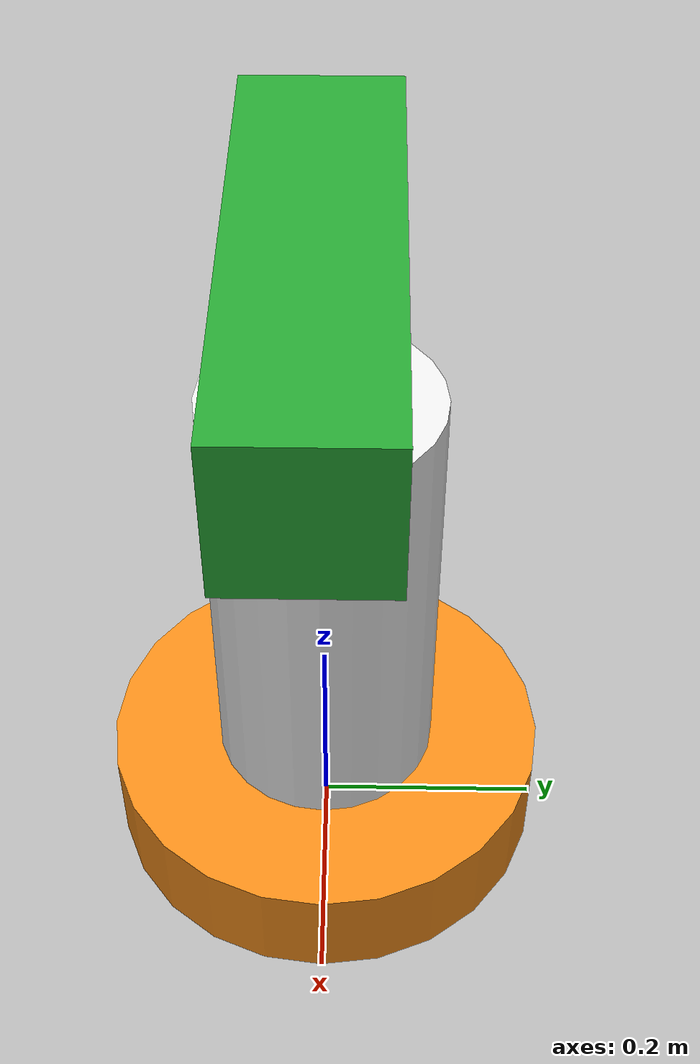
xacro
<?xml version="1.0"?>

<robot name="axis_cam" xmlns:xacro="http://www.ros.org/wiki/xacro">

    <!-- ====================  Base link frame ==================== -->

    <link name="world"/>

    <link name="base_link">
      <inertial>
        <mass value="0.001" />
        <origin xyz="0 0 0" />
        <inertia ixx="0.0001" ixy="0.0" ixz="0.0"
          iyy="0.0001" iyz="0.0"
          izz="0.0001" />
      </inertial>

      <visual>
         <origin xyz="0 0 0.05" rpy="0 0 0" />
         <geometry>
            <cylinder radius="0.2" length="0.1"/>
         </geometry>
      </visual>

    </link>

    <gazebo reference="base_link">
      <material>Gazebo/Orange</material>
    </gazebo>

    <joint name="world_joint" type="fixed">
        <parent link="world" />
        <child link = "base_link" />
        <origin xyz="0.0 0.0 0.0" rpy="0.0 0.0 0.0" />
    </joint>

    <!-- ====================  link_1 frame ==================== -->

    <link name="pan_link">
      <inertial>
        <mass value="0.001" />
        <origin xyz="0 0 0" />
        <inertia ixx="0.0001" ixy="0.0" ixz="0.0"
          iyy="0.0001" iyz="0.0"
          izz="0.0001" />
      </inertial>

      <visual>
         <origin xyz="0 0 0.2" rpy="0 0 0" />
         <geometry>
            <cylinder radius="0.1" length="0.4"/>
         </geometry>
      </visual>

    </link>

    <gazebo reference="pan_link">
      <material>Gazebo/White</material>
    </gazebo>

    <joint name="joint_pan" type="continuous">
        <parent link="base_link" />
        <child link = "pan_link" />
        <origin xyz="0.0 0.0 0.1" rpy="0.0 0.0 0.0" />
        <axis xyz="0 0 1" />
    </joint>

    <!-- ====================  link_2 frame ==================== -->

    <link name="tilt_link">
      <inertial>
        <mass value="0.001" />
        <origin xyz="0 0 0" />
        <inertia ixx="0.0001" ixy="0.0" ixz="0.0"
          iyy="0.0001" iyz="0.0"
          izz="0.0001" />
      </inertial>

       <visual>
         <origin xyz="0 0 0.075" rpy="0 0 0" />
         <geometry>
            <cylinder radius="0.05" length="0.15"/>
         </geometry>
      </visual>

    </link>

    <gazebo reference="tilt_link">
      <material>Gazebo/Red</material>
    </gazebo>

    <joint name="joint_tilt" type="revolute">
        <parent link="pan_link" />
        <child link = "tilt_link" />
        <origin xyz="0.0 0.0 0.4" rpy="0.0 0.0 0.0" />
         <limit  effort="1000.0"  lower="1.57" upper="-0.785" velocity="0.5"/>
        <axis xyz="0 1 0" />
    </joint>

    <!-- ====================  link_end_effector frame ==================== -->

    <link name="camera_link">
      <inertial>
        <mass value="0.001" />
        <origin xyz="0 0 0" />
        <inertia ixx="0.0001" ixy="0.0" ixz="0.0"
          iyy="0.0001" iyz="0.0"
          izz="0.0001" />
      </inertial>

       <visual>
         <origin xyz="0.1 0.0 0.006" rpy="0 0 0" />
         <geometry>
            <box size="0.4 0.12 0.12" />
         </geometry>
      </visual>

    </link>

    <gazebo reference="camera_link">
      <material>Gazebo/Green</material>
    </gazebo>

    <joint name="joint_camera" type="fixed">
        <parent link="tilt_link" />
        <child link = "camera_link" />
        <origin xyz="0.0 0.0 0.15" rpy="0.0 0.0 0.0" />
        <axis xyz="0 1 0" />
    </joint>

   <!-- ====================== Gazebo plugin ======================== -->

    <!-- ros_control plugin -->

    <gazebo>
        <plugin name="gazebo_ros_control" filename="libgazebo_ros_control.so">
        <robotSimType>gazebo_ros_control/DefaultRobotHWSim</robotSimType>
        <legacyModeNS>true</legacyModeNS>
        </plugin>
    </gazebo>

   <!-- ====================== Transmissions ======================== -->

    <!--
        PositionJointInterface
        VelocityJointInterface
        EffortJointInterface
    -->

    <transmission name="trans1">

        <type>transmission_interface/SimpleTransmission</type>

        <joint name="joint_pan">
            <hardwareInterface>hardware_interface/VelocityJointInterface</hardwareInterface>
        </joint>

        <actuator name="motor1">
            <hardwareInterface>hardware_interface/VelocityJointInterface</hardwareInterface>
            <mechanicalReduction>1</mechanicalReduction>
        </actuator>

    </transmission>

    <transmission name="trans2">

        <type>transmission_interface/SimpleTransmission</type>

        <joint name="joint_tilt">
            <hardwareInterface>hardware_interface/VelocityJointInterface</hardwareInterface>
        </joint>

        <actuator name="motor2">
            <hardwareInterface>hardware_interface/VelocityJointInterface</hardwareInterface>
            <mechanicalReduction>1</mechanicalReduction>
        </actuator>

    </transmission>

</robot>
